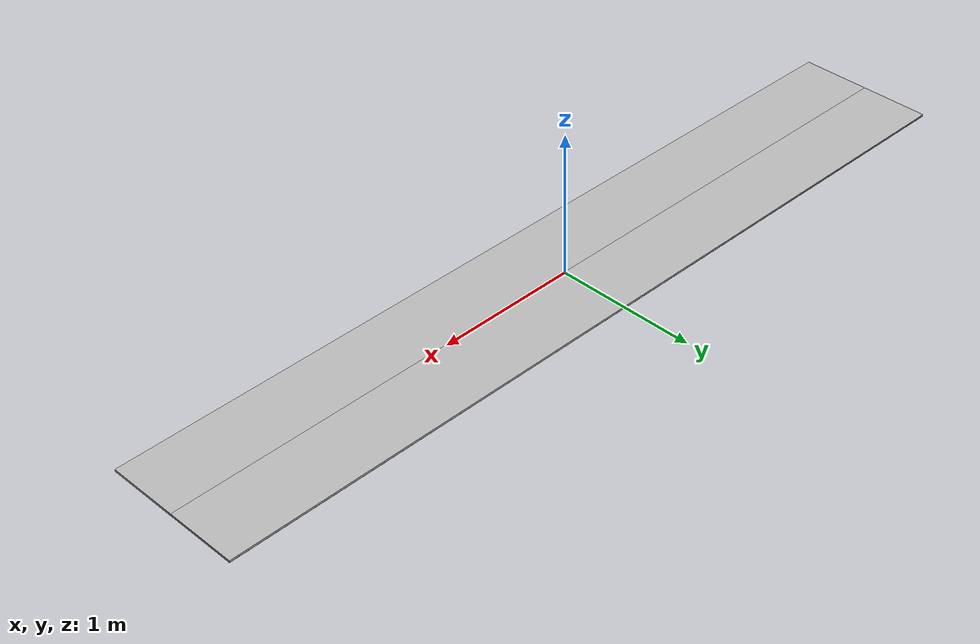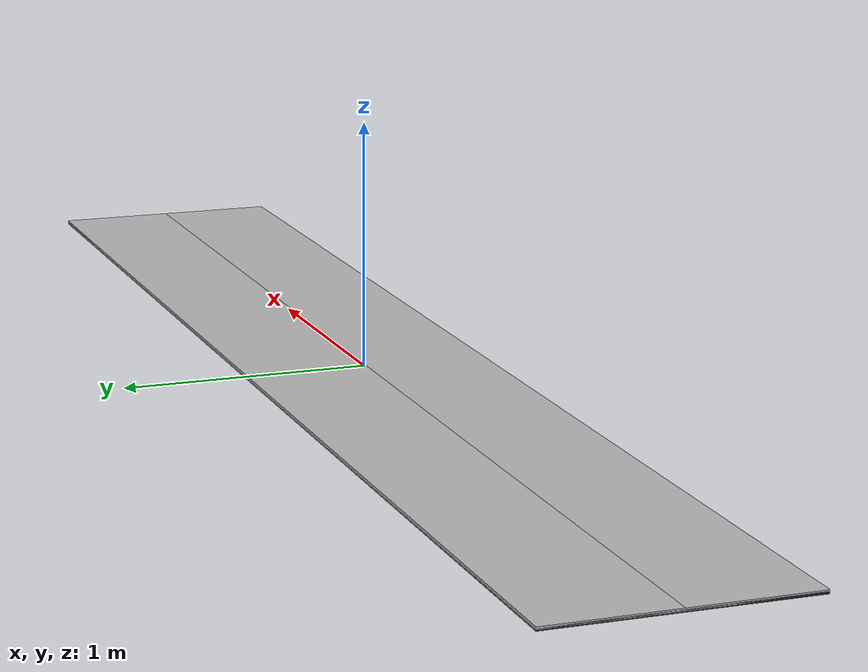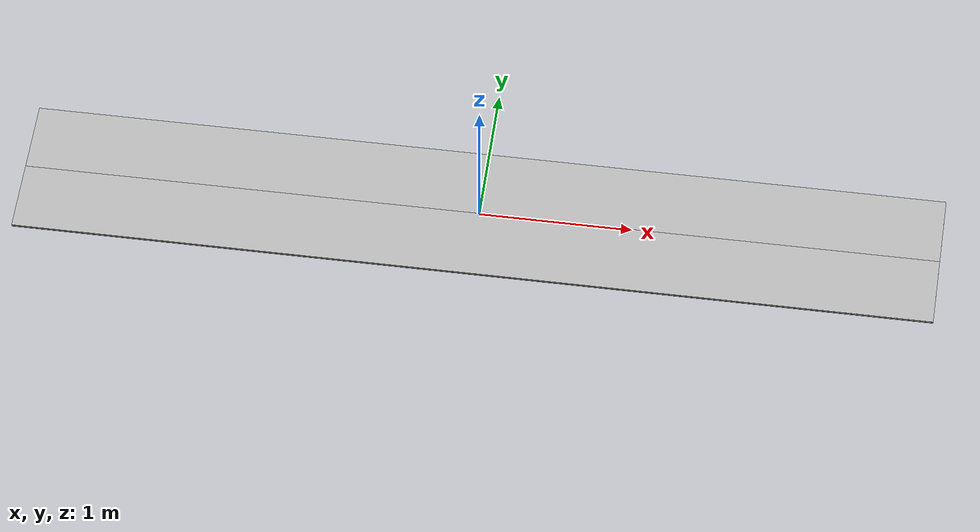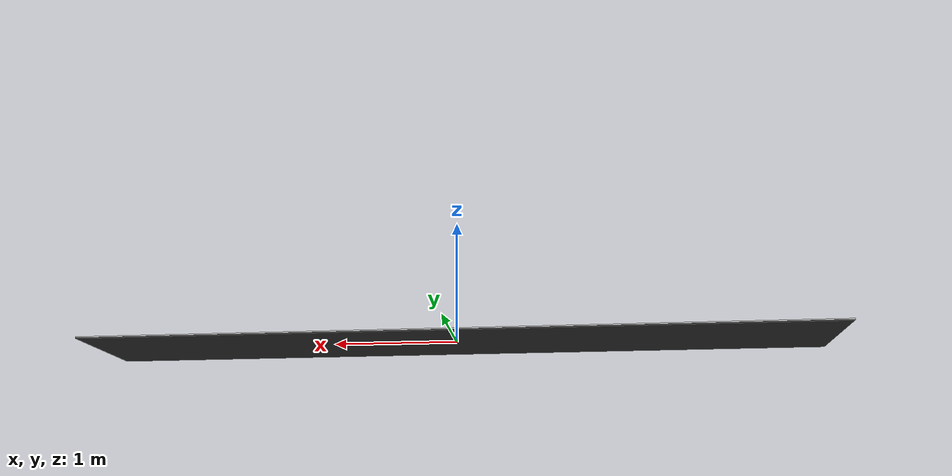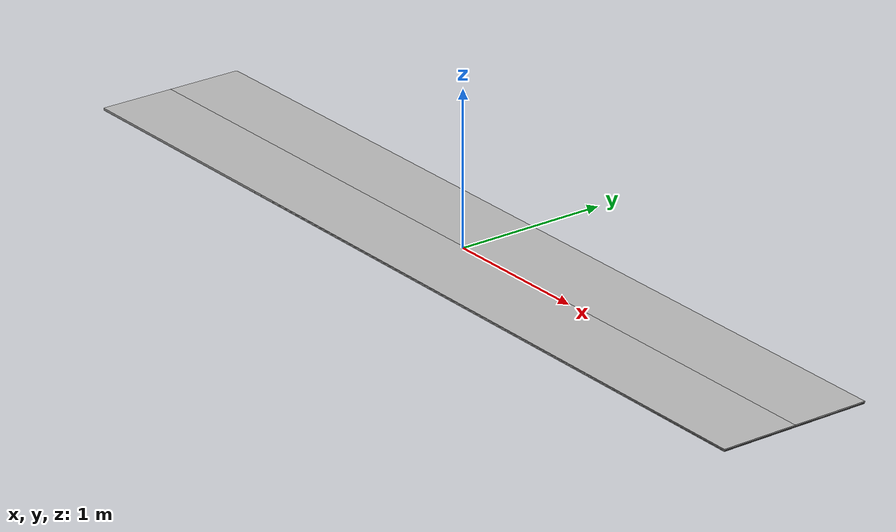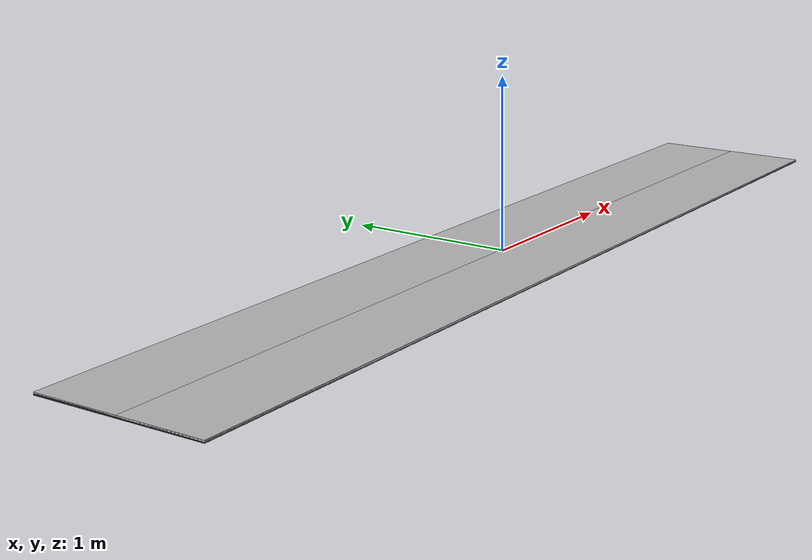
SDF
<sdf version="1.6">
  <model name="split_belt_treadmill">
    <static>true</static>

    <!-- Base Link (Fixed in Place) -->
    <link name="base_link">
      <collision name="base_collision">
        <geometry>
          <box>
            <size>6.0 1.0 0.01</size>
          </box>
        </geometry>
      </collision>
      <visual name="base_visual">
        <geometry>
          <box>
            <size>6.0 1.0 0.01</size>
          </box>
        </geometry>
        <material>
          <script>
            <uri>file://media/materials/scripts/gazebo.material</uri>
            <name>Gazebo/Black</name>
          </script>
        </material>
      </visual>
    </link>

    <!-- Left Belt -->
    <link name="left_belt">
      <collision name="left_belt_collision">
        <geometry>
          <box>
            <size>6.0 0.5 0.01</size>
          </box>
        </geometry>
      </collision>
      <visual name="left_belt_visual">
        <geometry>
          <box>
            <size>6.0 0.5 0.01</size>
          </box>
        </geometry>
      </visual>
      <pose>0 0.25 0.005 0 0 0</pose>
    </link>

    <!-- Right Belt -->
    <link name="right_belt">
      <collision name="right_belt_collision">
        <geometry>
          <box>
            <size>6.0 0.5 0.01</size>
          </box>
        </geometry>
      </collision>
      <visual name="right_belt_visual">
        <geometry>
          <box>
            <size>6.0 0.5 0.01</size>
          </box>
        </geometry>
      </visual>
      <pose>0 -0.25 0.005 0 0 0</pose>
    </link>

    <!-- Joint between base and left belt -->
    <joint name="left_belt_joint" type="revolute">
      <parent>base_link</parent>
      <child>left_belt</child>
      <axis>
        <xyz>0 1 0</xyz>
        <limit>
          <lower>-6.28</lower>
          <upper>6.28</upper>
        </limit>
        <dynamics>
          <damping>0.1</damping>
        </dynamics>
      </axis>
    </joint>

    <!-- Joint between base and right belt -->
    <joint name="right_belt_joint" type="revolute">
      <parent>base_link</parent>
      <child>right_belt</child>
      <axis>
        <xyz>0 1 0</xyz>
        <limit>
          <lower>-6.28</lower>
          <upper>6.28</upper>
        </limit>
        <dynamics>
          <damping>0.1</damping>
        </dynamics>
      </axis>
    </joint>

    <!-- Plugin for controlling the belts -->
    <plugin name="treadmill_plugin" filename="libgazebo_ros_control.so">
      <robotNamespace>/split_belt_treadmill</robotNamespace>
    </plugin>
  </model>
</sdf>
